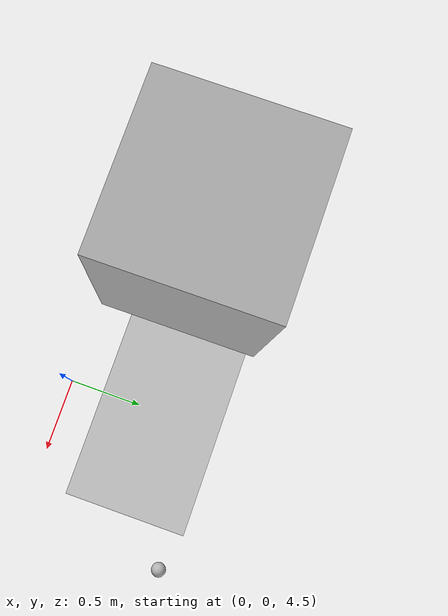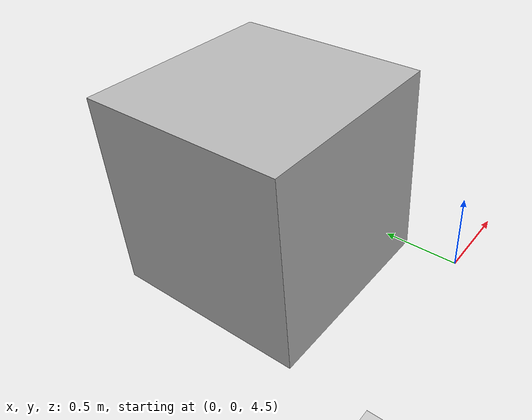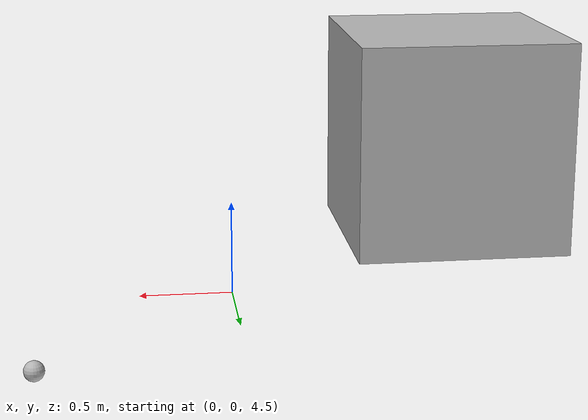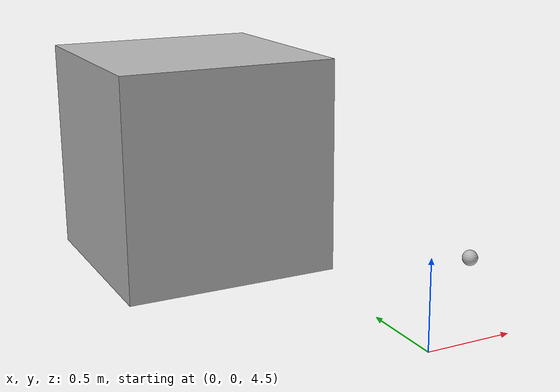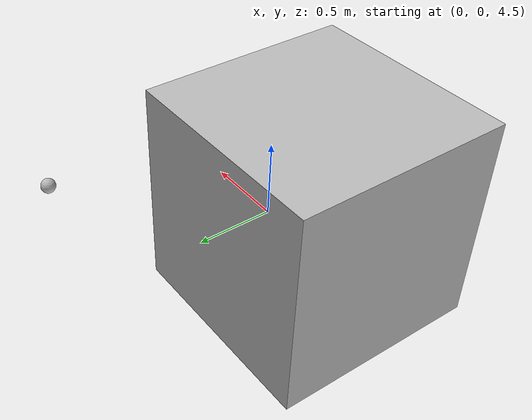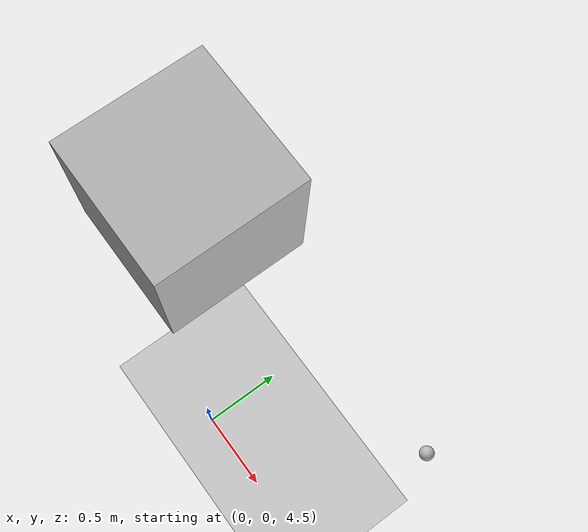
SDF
<sdf version="1.4">
 <world name="default">
  <plugin name="link_objects" filename="liblink_objects.so"/>
  <light name="sun" type="directional">
   <pose>0.000000 0.000000 10.000000 0.000000 0.000000 0.000000</pose>
   <diffuse>0.800000 0.800000 0.800000 1.000000</diffuse>
   <specular>0.100000 0.100000 0.100000 1.000000</specular>
   <attenuation>
    <range>1000.000000</range>
    <constant>0.900000</constant>
    <linear>0.010000</linear>
    <quadratic>0.001000</quadratic>
   </attenuation>
   <direction>-0.500000 0.500000 -1.000000</direction>
  </light>
  <model name="ground_plane">
   <static>1</static>
   <link name="link">
    <collision name="collision">
     <geometry>
      <plane><normal>0.000000 0.000000 1.000000</normal><size>100.000000 100.000000</size></plane>
     </geometry>
     <surface><friction><ode><mu>100.000000</mu><mu2>50.000000</mu2></ode></friction></surface>
    </collision>
    <visual name="visual">
     <cast_shadows>0</cast_shadows>
     <geometry>
      <plane><normal>0.000000 0.000000 1.000000</normal><size>100.000000 100.000000</size></plane>
     </geometry>
     <material>
      <script><uri>file://media/materials/scripts/gazebo.material</uri><name>Gazebo/Grey</name></script>
     </material>
    </visual>
    <velocity_decay><linear>0.000000</linear><angular>0.000000</angular></velocity_decay>
   </link>
  </model>
  <physics type="ode">
   <gravity>0.000000 0.000000 -0.400000</gravity>
   <real_time_update_rate>1000.000000</real_time_update_rate>
  </physics>
  <scene>
   <ambient>0.200000 0.200000 0.200000 1.000000</ambient>
   <background>0.700000 0.700000 0.700000 1.000000</background>
   <shadows>1</shadows>
  </scene>
  <model name="sphere1">
   <pose>1.000000 1.000000 4.5123 0.000000 0.000000 0.000000</pose>
   <link name="link">
    <collision name="collision"><geometry><sphere><radius>0.050000</radius></sphere></geometry></collision>
    <visual name="visual"><geometry><sphere><radius>0.050000</radius></sphere></geometry></visual>
    <velocity_decay><linear>0.000000</linear><angular>0.000000</angular></velocity_decay>
   </link>
  </model>
  <model name="box1">
   <pose>-1.000000 0.595944 5.500000 0.000000 0.000000 0.000000</pose>
   <link name="link">
    <inertial>
     <mass>0.0001</mass>
     <inertia>
      <ixx>0.083000</ixx>
      <ixy>0.000000</ixy>
      <ixz>0.08000</ixz>
      <iyy>0.083000</iyy>
      <iyz>0.08000</iyz>
      <izz>0.083000</izz>
     </inertia>
    </inertial>
    <collision name="collision">
     <geometry><box><size>1.000000 1.000000 1.000000</size></box></geometry>
    </collision>
    <visual name="visual"><geometry><box><size>1.000000 1.000000 1.000000</size></box></geometry></visual>
    <velocity_decay><linear>0.000000</linear><angular>0.000000</angular></velocity_decay>
   </link>
  </model>
 </world>
</sdf>
